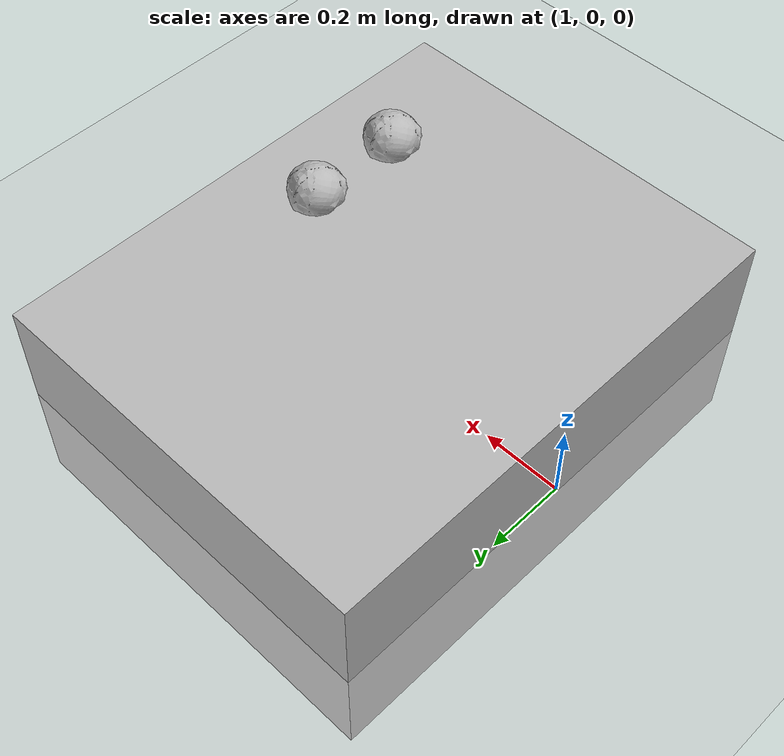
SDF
<?xml version="1.0"?>
<sdf version="1.4">
  <world name="default">
    <include>
      <uri>model://ground_plane</uri>
    </include>
    <include>
      <uri>model://sun</uri>
    </include>
    <include>
      <name>cabbage_stage</name>
      <uri>model://cabbage_stage</uri>
      <pose>1.5 0 0 0 0 0</pose>
    </include>
    <include>
      <name>cabbage1</name>
      <uri>model://cabbage</uri>
      <pose>1.5 0 0.7 0 0 0</pose>
    </include>
    <include>
      <name>cabbage2</name>
      <uri>model://cabbage</uri>
      <pose>1.5 0.2 0.7 0 0 0</pose>
    </include>
  </world>
</sdf>

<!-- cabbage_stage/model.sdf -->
<sdf version="1.4">
    <model name="cabbage_stage">
        <link name="link">
            <inertial>
                <mass>1</mass>
                <inertia>
                    <ixx>0.083</ixx>
                    <ixy>0.0</ixy>
                    <ixz>0.0</ixz>
                    <iyy>0.083</iyy>
                    <iyz>0.0</iyz>
                    <izz>0.083</izz>
                </inertia>
            </inertial>
            <collision name="collision">
                <geometry>
                    <box>
                        <size>1.01 1.26 0.55</size>
                    </box>
                </geometry>
            </collision>
            <visual name="visual">
                <geometry>
                    <box>
                        <size>1.01 1.26 0.55</size>
                    </box>
                </geometry>
            </visual>
        </link>
    </model>
</sdf>

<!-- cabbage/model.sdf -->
<sdf version="1.4">
    <model name='cabbage'>
        <link name='link'>
          <inertial>
            <mass>1.5</mass>
            <inertia>
              <ixx>0.0017004</ixx>
              <ixy>0</ixy>
              <ixz>0</ixz>
              <iyy>0.0019839</iyy>
              <iyz>0</iyz>
              <izz>0.0016659</izz>
            </inertia>
          </inertial>
          <collision name="collision">
            <geometry>
                <mesh>
                    <scale>0.001 0.001 0.001</scale>
                    <uri>model://cabbage/cabbage_single_light.dae</uri>
                </mesh>
            </geometry>
            <!-- ref: https://qiita.com/Yuya-Shimizu/items/f1a22d430a3f6343b3e7 -->
            <surface>
                <friction>
                    <ode>
                        <mu>0.6</mu>
                        <mu2>0.6</mu2>
                    </ode>
                </friction>
                <contact>
                    <ode>
                        <max_vel>0.1</max_vel>
                        <min_depth>0.0001</min_depth>
                    </ode>
                </contact>
            </surface>
          </collision>
          <visual name='visual'>
            <geometry>
              <mesh>
                <scale>0.001 0.001 0.001</scale>
                <uri>model://cabbage/cabbage_single_light.dae</uri>
              </mesh>
            </geometry>
            <material>
              <script>
                <uri>model://cabbage/texture.material</uri>
                <name>CabbageTexture</name>
              </script>
            </material>
          </visual>
        </link>
        <pose frame=''>0 0 0.047 1.570796 0 0</pose>
      </model>
</sdf>
